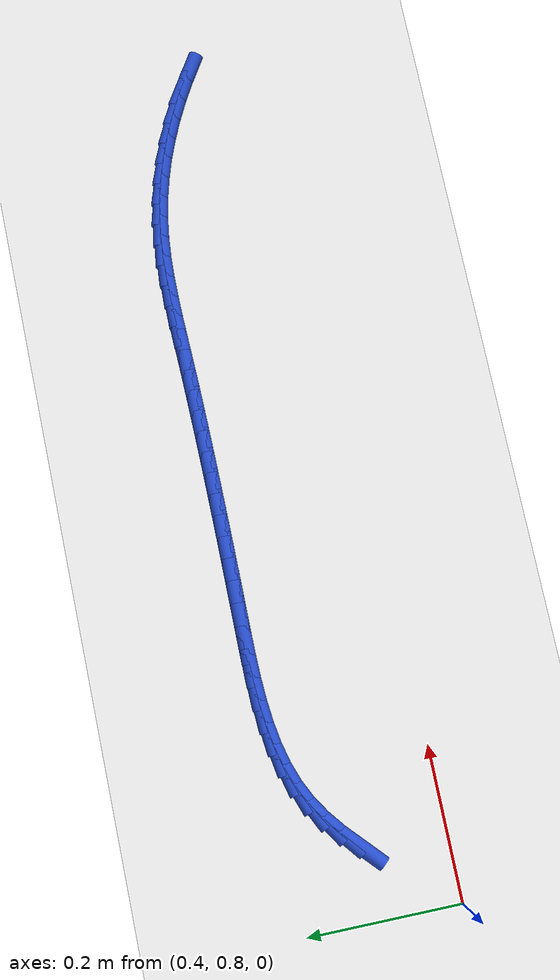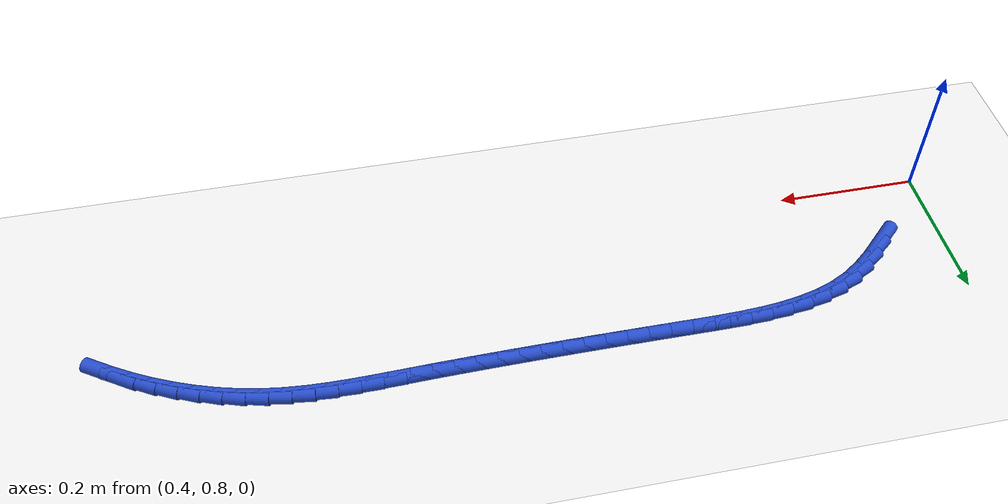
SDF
<sdf version="1.6">
 <world name="default">
  <model name="ground_plane">
   <static>1</static>
   <link name="link">
    <collision name="collision">
     <geometry><plane><normal>0 0 1</normal><size>100 100</size></plane></geometry>
     <surface><friction><ode><mu>100</mu><mu2>50</mu2></ode></friction></surface>
    </collision>
    <visual name="visual">
     <cast_shadows>0</cast_shadows>
     <geometry><plane><normal>0 0 1</normal><size>100 100</size></plane></geometry>
     <material>
      <script><uri>file://media/materials/scripts/gazebo.material</uri><name>Gazebo/WhiteGlow</name></script>
     </material>
    </visual>
   </link>
  </model>
  <model name="line">
   <link name="link_38">
    <pose>0.49711239292720466 0.912871523915428 0.01 0 1.57 0.7474370438369248</pose>
    <collision name="collision">
     <geometry><cylinder><radius>0.01</radius><length>0.08</length></cylinder></geometry>
    </collision>
    <visual name="visual">
     <material>
      <script><name>Gazebo/Blue</name><uri>file://media/materials/scripts/gazebo.material</uri></script>
     </material>
     <geometry><cylinder><radius>0.01</radius><length>0.08</length></cylinder></geometry>
    </visual>
   </link>
   <link name="link_39">
    <pose>0.5176519136495165 0.9319079743957353 0.01 0 1.57 0.6714032635390633</pose>
    <collision name="collision">
     <geometry><cylinder><radius>0.01</radius><length>0.08</length></cylinder></geometry>
    </collision>
    <visual name="visual">
     <material>
      <script><name>Gazebo/Blue</name><uri>file://media/materials/scripts/gazebo.material</uri></script>
     </material>
     <geometry><cylinder><radius>0.01</radius><length>0.08</length></cylinder></geometry>
    </visual>
   </link>
   <link name="link_40">
    <pose>0.5391696701614394 0.9490047090862536 0.01 0 1.57 0.5727347406190535</pose>
    <collision name="collision">
     <geometry><cylinder><radius>0.01</radius><length>0.08</length></cylinder></geometry>
    </collision>
    <visual name="visual">
     <material>
      <script><name>Gazebo/Blue</name><uri>file://media/materials/scripts/gazebo.material</uri></script>
     </material>
     <geometry><cylinder><radius>0.01</radius><length>0.08</length></cylinder></geometry>
    </visual>
   </link>
   <link name="link_41">
    <pose>0.561956535535934 0.9636984459669355 0.01 0 1.57 0.45365566244552513</pose>
    <collision name="collision">
     <geometry><cylinder><radius>0.01</radius><length>0.08</length></cylinder></geometry>
    </collision>
    <visual name="visual">
     <material>
      <script><name>Gazebo/Blue</name><uri>file://media/materials/scripts/gazebo.material</uri></script>
     </material>
     <geometry><cylinder><radius>0.01</radius><length>0.08</length></cylinder></geometry>
    </visual>
   </link>
   <link name="link_42">
    <pose>0.5862822608783981 0.9755589823066295 0.01 0 1.57 0.3371239684838181</pose>
    <collision name="collision">
     <geometry><cylinder><radius>0.01</radius><length>0.08</length></cylinder></geometry>
    </collision>
    <visual name="visual">
     <material>
      <script><name>Gazebo/Blue</name><uri>file://media/materials/scripts/gazebo.material</uri></script>
     </material>
     <geometry><cylinder><radius>0.01</radius><length>0.08</length></cylinder></geometry>
    </visual>
   </link>
   <link name="link_43">
    <pose>0.6121228170552429 0.9846162070473866 0.01 0 1.57 0.23948480689791402</pose>
    <collision name="collision">
     <geometry><cylinder><radius>0.01</radius><length>0.08</length></cylinder></geometry>
    </collision>
    <visual name="visual">
     <material>
      <script><name>Gazebo/Blue</name><uri>file://media/materials/scripts/gazebo.material</uri></script>
     </material>
     <geometry><cylinder><radius>0.01</radius><length>0.08</length></cylinder></geometry>
    </visual>
   </link>
   <link name="link_44">
    <pose>0.6392388957476413 0.9912371596519429 0.01 0 1.57 0.16059064361516703</pose>
    <collision name="collision">
     <geometry><cylinder><radius>0.01</radius><length>0.08</length></cylinder></geometry>
    </collision>
    <visual name="visual">
     <material>
      <script><name>Gazebo/Blue</name><uri>file://media/materials/scripts/gazebo.material</uri></script>
     </material>
     <geometry><cylinder><radius>0.01</radius><length>0.08</length></cylinder></geometry>
    </visual>
   </link>
   <link name="link_45">
    <pose>0.6673862441356496 0.9957966232073175 0.01 0 1.57 0.09896099443434532</pose>
    <collision name="collision">
     <geometry><cylinder><radius>0.01</radius><length>0.08</length></cylinder></geometry>
    </collision>
    <visual name="visual">
     <material>
      <script><name>Gazebo/Blue</name><uri>file://media/materials/scripts/gazebo.material</uri></script>
     </material>
     <geometry><cylinder><radius>0.01</radius><length>0.08</length></cylinder></geometry>
    </visual>
   </link>
   <link name="link_46">
    <pose>0.6963206093993242 0.9986693808005298 0.01 0 1.57 0.05290129870291687</pose>
    <collision name="collision">
     <geometry><cylinder><radius>0.01</radius><length>0.08</length></cylinder></geometry>
    </collision>
    <visual name="visual">
     <material>
      <script><name>Gazebo/Blue</name><uri>file://media/materials/scripts/gazebo.material</uri></script>
     </material>
     <geometry><cylinder><radius>0.01</radius><length>0.08</length></cylinder></geometry>
    </visual>
   </link>
   <link name="link_47">
    <pose>0.7257977387187203 1.0002302155185985 0.01 0 1.57 0.02094341971740238</pose>
    <collision name="collision">
     <geometry><cylinder><radius>0.01</radius><length>0.08</length></cylinder></geometry>
    </collision>
    <visual name="visual">
     <material>
      <script><name>Gazebo/Blue</name><uri>file://media/materials/scripts/gazebo.material</uri></script>
     </material>
     <geometry><cylinder><radius>0.01</radius><length>0.08</length></cylinder></geometry>
    </visual>
   </link>
   <link name="link_48">
    <pose>0.7555733792738945 1.0008539104485432 0.01 0 1.57 0.0020562638327657145</pose>
    <collision name="collision">
     <geometry><cylinder><radius>0.01</radius><length>0.08</length></cylinder></geometry>
    </collision>
    <visual name="visual">
     <material>
      <script><name>Gazebo/Blue</name><uri>file://media/materials/scripts/gazebo.material</uri></script>
     </material>
     <geometry><cylinder><radius>0.01</radius><length>0.08</length></cylinder></geometry>
    </visual>
   </link>
   <link name="link_49">
    <pose>0.7854032782449024 1.000915248677383 0.01 0 1.57 -0.004418155447898515</pose>
    <collision name="collision">
     <geometry><cylinder><radius>0.01</radius><length>0.08</length></cylinder></geometry>
    </collision>
    <visual name="visual">
     <material>
      <script><name>Gazebo/Blue</name><uri>file://media/materials/scripts/gazebo.material</uri></script>
     </material>
     <geometry><cylinder><radius>0.01</radius><length>0.08</length></cylinder></geometry>
    </visual>
   </link>
   <link name="link_50">
    <pose>0.8150468088220629 1.0007842780990812 0.01 0 1.57 -0.003809452947665123</pose>
    <collision name="collision">
     <geometry><cylinder><radius>0.01</radius><length>0.08</length></cylinder></geometry>
    </collision>
    <visual name="visual">
     <material>
      <script><name>Gazebo/Blue</name><uri>file://media/materials/scripts/gazebo.material</uri></script>
     </material>
     <geometry><cylinder><radius>0.01</radius><length>0.08</length></cylinder></geometry>
    </visual>
   </link>
   <link name="link_51">
    <pose>0.8443847401512636 1.0006725160894727 0.01 0 1.57 -0.002522411451427157</pose>
    <collision name="collision">
     <geometry><cylinder><radius>0.01</radius><length>0.08</length></cylinder></geometry>
    </collision>
    <visual name="visual">
     <material>
      <script><name>Gazebo/Blue</name><uri>file://media/materials/scripts/gazebo.material</uri></script>
     </material>
     <geometry><cylinder><radius>0.01</radius><length>0.08</length></cylinder></geometry>
    </visual>
   </link>
   <link name="link_52">
    <pose>0.8734450706908279 1.000599213823474 0.01 0 1.57 -0.0009421544616380929</pose>
    <collision name="collision">
     <geometry><cylinder><radius>0.01</radius><length>0.08</length></cylinder></geometry>
    </collision>
    <visual name="visual">
     <material>
      <script><name>Gazebo/Blue</name><uri>file://media/materials/scripts/gazebo.material</uri></script>
     </material>
     <geometry><cylinder><radius>0.01</radius><length>0.08</length></cylinder></geometry>
    </visual>
   </link>
   <link name="link_53">
    <pose>0.9022646519438626 1.00057206131838 0.01 0 1.57 0.0009326097486870044</pose>
    <collision name="collision">
     <geometry><cylinder><radius>0.01</radius><length>0.08</length></cylinder></geometry>
    </collision>
    <visual name="visual">
     <material>
      <script><name>Gazebo/Blue</name><uri>file://media/materials/scripts/gazebo.material</uri></script>
     </material>
     <geometry><cylinder><radius>0.01</radius><length>0.08</length></cylinder></geometry>
    </visual>
   </link>
   <link name="link_54">
    <pose>0.9308803354134749 1.0005987485914862 0.01 0 1.57 0.0031009142990244425</pose>
    <collision name="collision">
     <geometry><cylinder><radius>0.01</radius><length>0.08</length></cylinder></geometry>
    </collision>
    <visual name="visual">
     <material>
      <script><name>Gazebo/Blue</name><uri>file://media/materials/scripts/gazebo.material</uri></script>
     </material>
     <geometry><cylinder><radius>0.01</radius><length>0.08</length></cylinder></geometry>
    </visual>
   </link>
   <link name="link_55">
    <pose>0.9593289726027725 1.0006869656600899 0.01 0 1.57 0.005559460407578012</pose>
    <collision name="collision">
     <geometry><cylinder><radius>0.01</radius><length>0.08</length></cylinder></geometry>
    </collision>
    <visual name="visual">
     <material>
      <script><name>Gazebo/Blue</name><uri>file://media/materials/scripts/gazebo.material</uri></script>
     </material>
     <geometry><cylinder><radius>0.01</radius><length>0.08</length></cylinder></geometry>
    </visual>
   </link>
   <link name="link_56">
    <pose>0.9876474150148628 1.0008444025414862 0.01 0 1.57 0.008302586487947673</pose>
    <collision name="collision">
     <geometry><cylinder><radius>0.01</radius><length>0.08</length></cylinder></geometry>
    </collision>
    <visual name="visual">
     <material>
      <script><name>Gazebo/Blue</name><uri>file://media/materials/scripts/gazebo.material</uri></script>
     </material>
     <geometry><cylinder><radius>0.01</radius><length>0.08</length></cylinder></geometry>
    </visual>
   </link>
   <link name="link_57">
    <pose>1.0158725141528524 1.0010787492529711 0.01 0 1.57 0.011322282481975855</pose>
    <collision name="collision">
     <geometry><cylinder><radius>0.01</radius><length>0.08</length></cylinder></geometry>
    </collision>
    <visual name="visual">
     <material>
      <script><name>Gazebo/Blue</name><uri>file://media/materials/scripts/gazebo.material</uri></script>
     </material>
     <geometry><cylinder><radius>0.01</radius><length>0.08</length></cylinder></geometry>
    </visual>
   </link>
   <link name="link_58">
    <pose>1.0440411215198488 1.001397695811841 0.01 0 1.57 0.014608250772847173</pose>
    <collision name="collision">
     <geometry><cylinder><radius>0.01</radius><length>0.08</length></cylinder></geometry>
    </collision>
    <visual name="visual">
     <material>
      <script><name>Gazebo/Blue</name><uri>file://media/materials/scripts/gazebo.material</uri></script>
     </material>
     <geometry><cylinder><radius>0.01</radius><length>0.08</length></cylinder></geometry>
    </visual>
   </link>
   <link name="link_59">
    <pose>1.07219008861896 1.001808932235391 0.01 0 1.57 0.018148013377275778</pose>
    <collision name="collision">
     <geometry><cylinder><radius>0.01</radius><length>0.08</length></cylinder></geometry>
    </collision>
    <visual name="visual">
     <material>
      <script><name>Gazebo/Blue</name><uri>file://media/materials/scripts/gazebo.material</uri></script>
     </material>
     <geometry><cylinder><radius>0.01</radius><length>0.08</length></cylinder></geometry>
    </visual>
   </link>
   <link name="link_60">
    <pose>1.1003562669532925 1.0023201485409179 0.01 0 1.57 0.0219270634152311</pose>
    <collision name="collision">
     <geometry><cylinder><radius>0.01</radius><length>0.08</length></cylinder></geometry>
    </collision>
    <visual name="visual">
     <material>
      <script><name>Gazebo/Blue</name><uri>file://media/materials/scripts/gazebo.material</uri></script>
     </material>
     <geometry><cylinder><radius>0.01</radius><length>0.08</length></cylinder></geometry>
    </visual>
   </link>
   <link name="link_61">
    <pose>1.1285765080259542 1.0029390347457172 0.01 0 1.57 0.02592905719934244</pose>
    <collision name="collision">
     <geometry><cylinder><radius>0.01</radius><length>0.08</length></cylinder></geometry>
    </collision>
    <visual name="visual">
     <material>
      <script><name>Gazebo/Blue</name><uri>file://media/materials/scripts/gazebo.material</uri></script>
     </material>
     <geometry><cylinder><radius>0.01</radius><length>0.08</length></cylinder></geometry>
    </visual>
   </link>
   <link name="link_62">
    <pose>1.1568876633400518 1.0036732808670852 0.01 0 1.57 0.029918847076156975</pose>
    <collision name="collision">
     <geometry><cylinder><radius>0.01</radius><length>0.08</length></cylinder></geometry>
    </collision>
    <visual name="visual">
     <material>
      <script><name>Gazebo/Blue</name><uri>file://media/materials/scripts/gazebo.material</uri></script>
     </material>
     <geometry><cylinder><radius>0.01</radius><length>0.08</length></cylinder></geometry>
    </visual>
   </link>
   <link name="link_63">
    <pose>1.1853246781429332 1.0045243375169788 0.01 0 1.57 0.02871947927309448</pose>
    <collision name="collision">
     <geometry><cylinder><radius>0.01</radius><length>0.08</length></cylinder></geometry>
    </collision>
    <visual name="visual">
     <material>
      <script><name>Gazebo/Blue</name><uri>file://media/materials/scripts/gazebo.material</uri></script>
     </material>
     <geometry><cylinder><radius>0.01</radius><length>0.08</length></cylinder></geometry>
    </visual>
   </link>
   <link name="link_64">
    <pose>1.2138769491300212 1.0053445693955991 0.01 0 1.57 0.017108140027614842</pose>
    <collision name="collision">
     <geometry><cylinder><radius>0.01</radius><length>0.08</length></cylinder></geometry>
    </collision>
    <visual name="visual">
     <material>
      <script><name>Gazebo/Blue</name><uri>file://media/materials/scripts/gazebo.material</uri></script>
     </material>
     <geometry><cylinder><radius>0.01</radius><length>0.08</length></cylinder></geometry>
    </visual>
   </link>
   <link name="link_65">
    <pose>1.242487356782488 1.0058340880157128 0.01 0 1.57 -0.005171556997983432</pose>
    <collision name="collision">
     <geometry><cylinder><radius>0.01</radius><length>0.08</length></cylinder></geometry>
    </collision>
    <visual name="visual">
     <material>
      <script><name>Gazebo/Blue</name><uri>file://media/materials/scripts/gazebo.material</uri></script>
     </material>
     <geometry><cylinder><radius>0.01</radius><length>0.08</length></cylinder></geometry>
    </visual>
   </link>
   <link name="link_66">
    <pose>1.271096681766466 1.0056861319418535 0.01 0 1.57 -0.0382380803553448</pose>
    <collision name="collision">
     <geometry><cylinder><radius>0.01</radius><length>0.08</length></cylinder></geometry>
    </collision>
    <visual name="visual">
     <material>
      <script><name>Gazebo/Blue</name><uri>file://media/materials/scripts/gazebo.material</uri></script>
     </material>
     <geometry><cylinder><radius>0.01</radius><length>0.08</length></cylinder></geometry>
    </visual>
   </link>
   <link name="link_67">
    <pose>1.2996457047480885 1.004593939738556 0.01 0 1.57 -0.0822351856872182</pose>
    <collision name="collision">
     <geometry><cylinder><radius>0.01</radius><length>0.08</length></cylinder></geometry>
    </collision>
    <visual name="visual">
     <material>
      <script><name>Gazebo/Blue</name><uri>file://media/materials/scripts/gazebo.material</uri></script>
     </material>
     <geometry><cylinder><radius>0.01</radius><length>0.08</length></cylinder></geometry>
    </visual>
   </link>
   <link name="link_68">
    <pose>1.3280752063934889 1.0022507499703537 0.01 0 1.57 -0.13718926984607108</pose>
    <collision name="collision">
     <geometry><cylinder><radius>0.01</radius><length>0.08</length></cylinder></geometry>
    </collision>
    <visual name="visual">
     <material>
      <script><name>Gazebo/Blue</name><uri>file://media/materials/scripts/gazebo.material</uri></script>
     </material>
     <geometry><cylinder><radius>0.01</radius><length>0.08</length></cylinder></geometry>
    </visual>
   </link>
   <link name="link_69">
    <pose>1.3563259572173743 0.9983505509226823 0.01 0 1.57 -0.19881200173481203</pose>
    <collision name="collision">
     <geometry><cylinder><radius>0.01</radius><length>0.08</length></cylinder></geometry>
    </collision>
    <visual name="visual">
     <material>
      <script><name>Gazebo/Blue</name><uri>file://media/materials/scripts/gazebo.material</uri></script>
     </material>
     <geometry><cylinder><radius>0.01</radius><length>0.08</length></cylinder></geometry>
    </visual>
   </link>
   <link name="link_70">
    <pose>1.384337106757857 0.9927070460822014 0.01 0 1.57 -0.25839338682389157</pose>
    <collision name="collision">
     <geometry><cylinder><radius>0.01</radius><length>0.08</length></cylinder></geometry>
    </collision>
    <visual name="visual">
     <material>
      <script><name>Gazebo/Blue</name><uri>file://media/materials/scripts/gazebo.material</uri></script>
     </material>
     <geometry><cylinder><radius>0.01</radius><length>0.08</length></cylinder></geometry>
    </visual>
   </link>
   <link name="link_71">
    <pose>1.412044419349836 0.9853839488895777 0.01 0 1.57 -0.3149771728390396</pose>
    <collision name="collision">
     <geometry><cylinder><radius>0.01</radius><length>0.08</length></cylinder></geometry>
    </collision>
    <visual name="visual">
     <material>
      <script><name>Gazebo/Blue</name><uri>file://media/materials/scripts/gazebo.material</uri></script>
     </material>
     <geometry><cylinder><radius>0.01</radius><length>0.08</length></cylinder></geometry>
    </visual>
   </link>
   <link name="link_72">
    <pose>1.4393832351315805 0.9764763012977632 0.01 0 1.57 -0.3687537159538804</pose>
    <collision name="collision">
     <geometry><cylinder><radius>0.01</radius><length>0.08</length></cylinder></geometry>
    </collision>
    <visual name="visual">
     <material>
      <script><name>Gazebo/Blue</name><uri>file://media/materials/scripts/gazebo.material</uri></script>
     </material>
     <geometry><cylinder><radius>0.01</radius><length>0.08</length></cylinder></geometry>
    </visual>
   </link>
   <link name="link_73">
    <pose>1.4662888942413566 0.9660791452597094 0.01 0 1.57 -0.41995595804681757</pose>
    <collision name="collision">
     <geometry><cylinder><radius>0.01</radius><length>0.08</length></cylinder></geometry>
    </collision>
    <visual name="visual">
     <material>
      <script><name>Gazebo/Blue</name><uri>file://media/materials/scripts/gazebo.material</uri></script>
     </material>
     <geometry><cylinder><radius>0.01</radius><length>0.08</length></cylinder></geometry>
    </visual>
   </link>
   <link name="link_74">
    <pose>1.4926967368174335 0.9542875227283685 0.01 0 1.57 -0.4688454429154838</pose>
    <collision name="collision">
     <geometry><cylinder><radius>0.01</radius><length>0.08</length></cylinder></geometry>
    </collision>
    <visual name="visual">
     <material>
      <script><name>Gazebo/Blue</name><uri>file://media/materials/scripts/gazebo.material</uri></script>
     </material>
     <geometry><cylinder><radius>0.01</radius><length>0.08</length></cylinder></geometry>
    </visual>
   </link>
   <link name="link_75">
    <pose>1.5185421029980777 0.9411964756566921 0.01 0 1.57 -0.5157020544627839</pose>
    <collision name="collision">
     <geometry><cylinder><radius>0.01</radius><length>0.08</length></cylinder></geometry>
    </collision>
    <visual name="visual">
     <material>
      <script><name>Gazebo/Blue</name><uri>file://media/materials/scripts/gazebo.material</uri></script>
     </material>
     <geometry><cylinder><radius>0.01</radius><length>0.08</length></cylinder></geometry>
    </visual>
   </link>
   <link name="link_76">
    <pose>1.5437603329215575 0.9269010459976321 0.01 0 1.57 -0.5608171557282082</pose>
    <collision name="collision">
     <geometry><cylinder><radius>0.01</radius><length>0.08</length></cylinder></geometry>
    </collision>
    <visual name="visual">
     <material>
      <script><name>Gazebo/Blue</name><uri>file://media/materials/scripts/gazebo.material</uri></script>
     </material>
     <geometry><cylinder><radius>0.01</radius><length>0.08</length></cylinder></geometry>
    </visual>
   </link>
  </model>
 </world>
</sdf>
